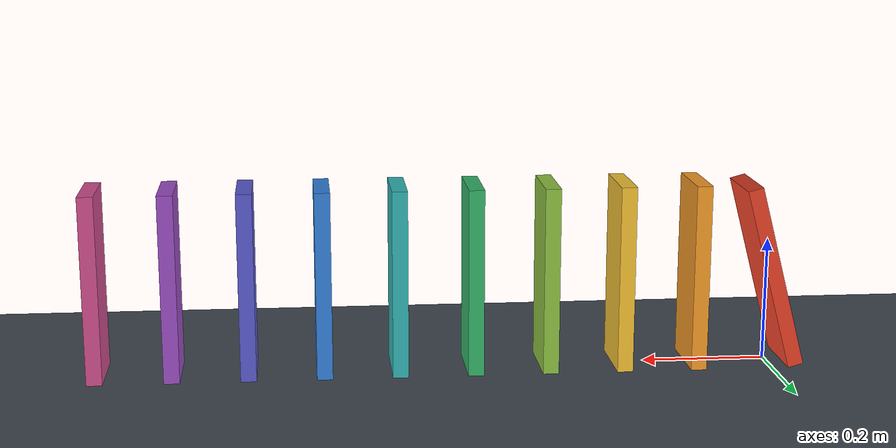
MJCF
<mujoco model="ten_domino_chain">
  <compiler angle="degree"/>
  <option timestep="0.002" gravity="0 0 -9.81" integrator="implicitfast" solver="Newton" iterations="100"/>

  <visual>
    <headlight ambient="0.35 0.35 0.35" diffuse="0.7 0.7 0.7" specular="0.2 0.2 0.2"/>
  </visual>

  <worldbody>
    <light name="overhead_light" pos="0.54 -0.8 2" dir="0 0.3 -1"/>
    <geom name="floor" type="plane" size="2 2 0.1" friction="1 0.005 0.0001" solref="0.008 1" rgba="0.25 0.28 0.32 1"/>

    <body name="domino1" pos="0 0 0.148124112" euler="0 15 0">
      <freejoint name="domino1_joint"/>
      <geom name="domino1_geom" type="box" size="0.0125 0.06 0.15" mass="0.15" friction="1 0.005 0.0001" solref="0.008 1" rgba="0.9 0.25 0.15 1"/>
    </body>

    <body name="domino2" pos="0.12 0 0.15">
      <freejoint name="domino2_joint"/>
      <geom name="domino2_geom" type="box" size="0.0125 0.06 0.15" mass="0.15" friction="1 0.005 0.0001" solref="0.008 1" rgba="0.95 0.6 0.15 1"/>
    </body>

    <body name="domino3" pos="0.24 0 0.15">
      <freejoint name="domino3_joint"/>
      <geom name="domino3_geom" type="box" size="0.0125 0.06 0.15" mass="0.15" friction="1 0.005 0.0001" solref="0.008 1" rgba="0.95 0.75 0.2 1"/>
    </body>

    <body name="domino4" pos="0.36 0 0.15">
      <freejoint name="domino4_joint"/>
      <geom name="domino4_geom" type="box" size="0.0125 0.06 0.15" mass="0.15" friction="1 0.005 0.0001" solref="0.008 1" rgba="0.55 0.75 0.25 1"/>
    </body>

    <body name="domino5" pos="0.48 0 0.15">
      <freejoint name="domino5_joint"/>
      <geom name="domino5_geom" type="box" size="0.0125 0.06 0.15" mass="0.15" friction="1 0.005 0.0001" solref="0.008 1" rgba="0.2 0.7 0.4 1"/>
    </body>

    <body name="domino6" pos="0.60 0 0.15">
      <freejoint name="domino6_joint"/>
      <geom name="domino6_geom" type="box" size="0.0125 0.06 0.15" mass="0.15" friction="1 0.005 0.0001" solref="0.008 1" rgba="0.2 0.7 0.7 1"/>
    </body>

    <body name="domino7" pos="0.72 0 0.15">
      <freejoint name="domino7_joint"/>
      <geom name="domino7_geom" type="box" size="0.0125 0.06 0.15" mass="0.15" friction="1 0.005 0.0001" solref="0.008 1" rgba="0.2 0.5 0.85 1"/>
    </body>

    <body name="domino8" pos="0.84 0 0.15">
      <freejoint name="domino8_joint"/>
      <geom name="domino8_geom" type="box" size="0.0125 0.06 0.15" mass="0.15" friction="1 0.005 0.0001" solref="0.008 1" rgba="0.35 0.35 0.8 1"/>
    </body>

    <body name="domino9" pos="0.96 0 0.15">
      <freejoint name="domino9_joint"/>
      <geom name="domino9_geom" type="box" size="0.0125 0.06 0.15" mass="0.15" friction="1 0.005 0.0001" solref="0.008 1" rgba="0.6 0.3 0.75 1"/>
    </body>

    <body name="domino10" pos="1.08 0 0.15">
      <freejoint name="domino10_joint"/>
      <geom name="domino10_geom" type="box" size="0.0125 0.06 0.15" mass="0.15" friction="1 0.005 0.0001" solref="0.008 1" rgba="0.8 0.3 0.55 1"/>
    </body>
  </worldbody>

  <keyframe>
    <key name="start"/>
  </keyframe>
</mujoco>
